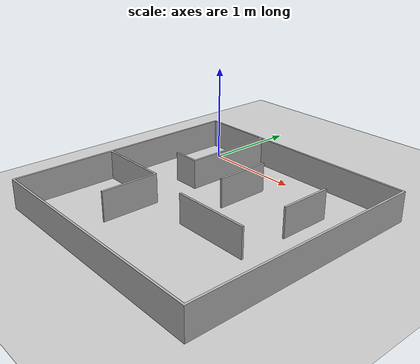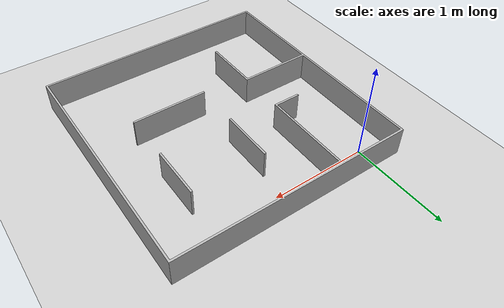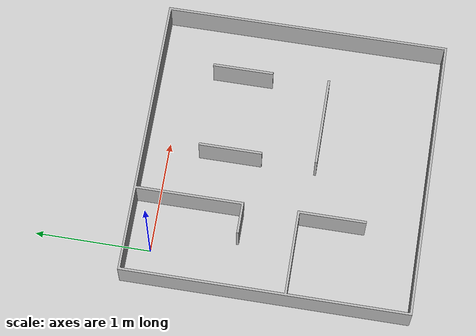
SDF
<?xml version="1.0"?>
<sdf version="1.4">
  <world name="default">
    <include>
      <uri>model://ground_plane</uri>
    </include>
    <include>
      <uri>model://sun</uri>
    </include>
    <model name="map_default">
      <pose>-0.299168 0.212582 0  0 0 0</pose>
      <static>true</static>
      <link name="map_default">
      <inertial>
        <mass>50.0</mass>
        <inertia> <!-- inertias are tricky to compute -->
          <!-- http://gazebosim.org/tutorials?tut=inertia&cat=build_robot -->
          <ixx>26.0016666667</ixx>       <!-- for a box: ixx = 0.083 * mass * (y*y + z*z) -->
          <ixy>0.0</ixy>         <!-- for a box: ixy = 0 -->
          <ixz>0.0</ixz>         <!-- for a box: ixz = 0 -->
          <iyy>51.2533333333</iyy>       <!-- for a box: iyy = 0.083 * mass * (x*x + z*z) -->
          <iyz>0.0</iyz>         <!-- for a box: iyz = 0 -->
          <izz>26.0016666667</izz>       <!-- for a box: izz = 0.083 * mass * (x*x + y*y) -->
        </inertia>
      </inertial>
        <visual name="map_default_visual">
          <geometry>
            <mesh><uri>file://map_default.stl</uri></mesh>
          </geometry>
        </visual>
        <collision name="map_default_coliision">
          <geometry>
            <mesh><uri>file://map_default.stl</uri></mesh>
          </geometry>
        </collision>
      </link>
    </model>
  </world>
</sdf>
